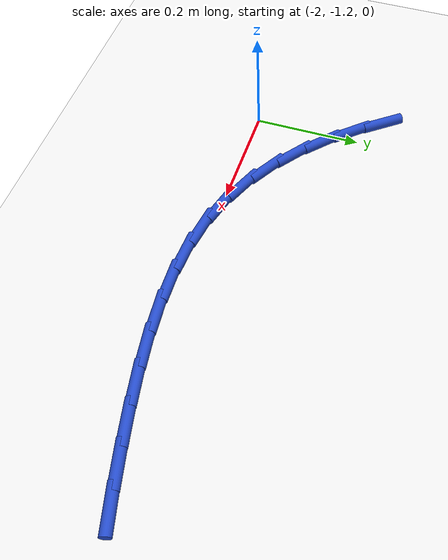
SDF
<sdf version="1.6">
 <world name="default">
  <model name="ground_plane">
   <static>1</static>
   <link name="link">
    <collision name="collision">
     <geometry><plane><normal>0 0 1</normal><size>100 100</size></plane></geometry>
     <surface><friction><ode><mu>100</mu><mu2>50</mu2></ode></friction></surface>
    </collision>
    <visual name="visual">
     <cast_shadows>0</cast_shadows>
     <geometry><plane><normal>0 0 1</normal><size>100 100</size></plane></geometry>
     <material>
      <script><uri>file://media/materials/scripts/gazebo.material</uri><name>Gazebo/WhiteGlow</name></script>
     </material>
    </visual>
   </link>
  </model>
  <model name="line">
   <link name="link_76">
    <pose>-2.05584024216739 -0.9631568315203376 0.01 0 1.57 -0.9247491362502651</pose>
    <collision name="collision">
     <geometry><cylinder><radius>0.01</radius><length>0.08</length></cylinder></geometry>
    </collision>
    <visual name="visual">
     <material>
      <script><name>Gazebo/Blue</name><uri>file://media/materials/scripts/gazebo.material</uri></script>
     </material>
     <geometry><cylinder><radius>0.01</radius><length>0.08</length></cylinder></geometry>
    </visual>
   </link>
   <link name="link_77">
    <pose>-2.0164954206411414 -1.0153392701510005 0.01 0 1.57 -0.8432607401800735</pose>
    <collision name="collision">
     <geometry><cylinder><radius>0.01</radius><length>0.08</length></cylinder></geometry>
    </collision>
    <visual name="visual">
     <material>
      <script><name>Gazebo/Blue</name><uri>file://media/materials/scripts/gazebo.material</uri></script>
     </material>
     <geometry><cylinder><radius>0.01</radius><length>0.08</length></cylinder></geometry>
    </visual>
   </link>
   <link name="link_78">
    <pose>-1.9734943026886602 -1.063628591231065 0.01 0 1.57 -0.7525542671755213</pose>
    <collision name="collision">
     <geometry><cylinder><radius>0.01</radius><length>0.08</length></cylinder></geometry>
    </collision>
    <visual name="visual">
     <material>
      <script><name>Gazebo/Blue</name><uri>file://media/materials/scripts/gazebo.material</uri></script>
     </material>
     <geometry><cylinder><radius>0.01</radius><length>0.08</length></cylinder></geometry>
    </visual>
   </link>
   <link name="link_79">
    <pose>-1.9270340055604773 -1.1071330328901434 0.01 0 1.57 -0.650364991892385</pose>
    <collision name="collision">
     <geometry><cylinder><radius>0.01</radius><length>0.08</length></cylinder></geometry>
    </collision>
    <visual name="visual">
     <material>
      <script><name>Gazebo/Blue</name><uri>file://media/materials/scripts/gazebo.material</uri></script>
     </material>
     <geometry><cylinder><radius>0.01</radius><length>0.08</length></cylinder></geometry>
    </visual>
   </link>
   <link name="link_80">
    <pose>-1.8773116465071187 -1.144960833257849 0.01 0 1.57 -0.534647016893456</pose>
    <collision name="collision">
     <geometry><cylinder><radius>0.01</radius><length>0.08</length></cylinder></geometry>
    </collision>
    <visual name="visual">
     <material>
      <script><name>Gazebo/Blue</name><uri>file://media/materials/scripts/gazebo.material</uri></script>
     </material>
     <geometry><cylinder><radius>0.01</radius><length>0.08</length></cylinder></geometry>
    </visual>
   </link>
   <link name="link_81">
    <pose>-1.8245243427791142 -1.1762202304637954 0.01 0 1.57 -0.4042150785568724</pose>
    <collision name="collision">
     <geometry><cylinder><radius>0.01</radius><length>0.08</length></cylinder></geometry>
    </collision>
    <visual name="visual">
     <material>
      <script><name>Gazebo/Blue</name><uri>file://media/materials/scripts/gazebo.material</uri></script>
     </material>
     <geometry><cylinder><radius>0.01</radius><length>0.08</length></cylinder></geometry>
    </visual>
   </link>
   <link name="link_82">
    <pose>-1.7688703570419135 -1.200027372657635 0.01 0 1.57 -0.269565358895061</pose>
    <collision name="collision">
     <geometry><cylinder><radius>0.01</radius><length>0.08</length></cylinder></geometry>
    </collision>
    <visual name="visual">
     <material>
      <script><name>Gazebo/Blue</name><uri>file://media/materials/scripts/gazebo.material</uri></script>
     </material>
     <geometry><cylinder><radius>0.01</radius><length>0.08</length></cylinder></geometry>
    </visual>
   </link>
   <link name="link_83">
    <pose>-1.710637462955687 -1.2161165540853351 0.01 0 1.57 -0.15052627372431554</pose>
    <collision name="collision">
     <geometry><cylinder><radius>0.01</radius><length>0.08</length></cylinder></geometry>
    </collision>
    <visual name="visual">
     <material>
      <script><name>Gazebo/Blue</name><uri>file://media/materials/scripts/gazebo.material</uri></script>
     </material>
     <geometry><cylinder><radius>0.01</radius><length>0.08</length></cylinder></geometry>
    </visual>
   </link>
   <link name="link_84">
    <pose>-1.650265666833936 -1.225273359068235 0.01 0 1.57 -0.05011096895784149</pose>
    <collision name="collision">
     <geometry><cylinder><radius>0.01</radius><length>0.08</length></cylinder></geometry>
    </collision>
    <visual name="visual">
     <material>
      <script><name>Gazebo/Blue</name><uri>file://media/materials/scripts/gazebo.material</uri></script>
     </material>
     <geometry><cylinder><radius>0.01</radius><length>0.08</length></cylinder></geometry>
    </visual>
   </link>
   <link name="link_85">
    <pose>-1.5882097846979242 -1.22838564498443 0.01 0 1.57 0.03229296296320381</pose>
    <collision name="collision">
     <geometry><cylinder><radius>0.01</radius><length>0.08</length></cylinder></geometry>
    </collision>
    <visual name="visual">
     <material>
      <script><name>Gazebo/Blue</name><uri>file://media/materials/scripts/gazebo.material</uri></script>
     </material>
     <geometry><cylinder><radius>0.01</radius><length>0.08</length></cylinder></geometry>
    </visual>
   </link>
   <link name="link_86">
    <pose>-1.5249246325689214 -1.2263412692120155 0.01 0 1.57 0.09823444104949555</pose>
    <collision name="collision">
     <geometry><cylinder><radius>0.01</radius><length>0.08</length></cylinder></geometry>
    </collision>
    <visual name="visual">
     <material>
      <script><name>Gazebo/Blue</name><uri>file://media/materials/scripts/gazebo.material</uri></script>
     </material>
     <geometry><cylinder><radius>0.01</radius><length>0.08</length></cylinder></geometry>
    </visual>
   </link>
   <link name="link_87">
    <pose>-1.4608650264681928 -1.2200280891290871 0.01 0 1.57 0.1494556243718533</pose>
    <collision name="collision">
     <geometry><cylinder><radius>0.01</radius><length>0.08</length></cylinder></geometry>
    </collision>
    <visual name="visual">
     <material>
      <script><name>Gazebo/Blue</name><uri>file://media/materials/scripts/gazebo.material</uri></script>
     </material>
     <geometry><cylinder><radius>0.01</radius><length>0.08</length></cylinder></geometry>
    </visual>
   </link>
   <link name="link_88">
    <pose>-1.3964857824170056 -1.2103339621137414 0.01 0 1.57 0.187474144973477</pose>
    <collision name="collision">
     <geometry><cylinder><radius>0.01</radius><length>0.08</length></cylinder></geometry>
    </collision>
    <visual name="visual">
     <material>
      <script><name>Gazebo/Blue</name><uri>file://media/materials/scripts/gazebo.material</uri></script>
     </material>
     <geometry><cylinder><radius>0.01</radius><length>0.08</length></cylinder></geometry>
    </visual>
   </link>
   <link name="link_89">
    <pose>-1.3322417164366254 -1.1981467455440733 0.01 0 1.57 0.2135462287835974</pose>
    <collision name="collision">
     <geometry><cylinder><radius>0.01</radius><length>0.08</length></cylinder></geometry>
    </collision>
    <visual name="visual">
     <material>
      <script><name>Gazebo/Blue</name><uri>file://media/materials/scripts/gazebo.material</uri></script>
     </material>
     <geometry><cylinder><radius>0.01</radius><length>0.08</length></cylinder></geometry>
    </visual>
   </link>
   <link name="link_90">
    <pose>-1.2685817646816993 -1.1843419196709215 0.01 0 1.57 0.2337570781439004</pose>
    <collision name="collision">
     <geometry><cylinder><radius>0.01</radius><length>0.08</length></cylinder></geometry>
    </collision>
    <visual name="visual">
     <material>
      <script><name>Gazebo/Blue</name><uri>file://media/materials/scripts/gazebo.material</uri></script>
     </material>
     <geometry><cylinder><radius>0.01</radius><length>0.08</length></cylinder></geometry>
    </visual>
   </link>
   <link name="link_91">
    <pose>-1.2057592805612793 -1.169383262798872 0.01 0 1.57 0.2548936070981293</pose>
    <collision name="collision">
     <geometry><cylinder><radius>0.01</radius><length>0.08</length></cylinder></geometry>
    </collision>
    <visual name="visual">
     <material>
      <script><name>Gazebo/Blue</name><uri>file://media/materials/scripts/gazebo.material</uri></script>
     </material>
     <geometry><cylinder><radius>0.01</radius><length>0.08</length></cylinder></geometry>
    </visual>
   </link>
  </model>
 </world>
</sdf>
